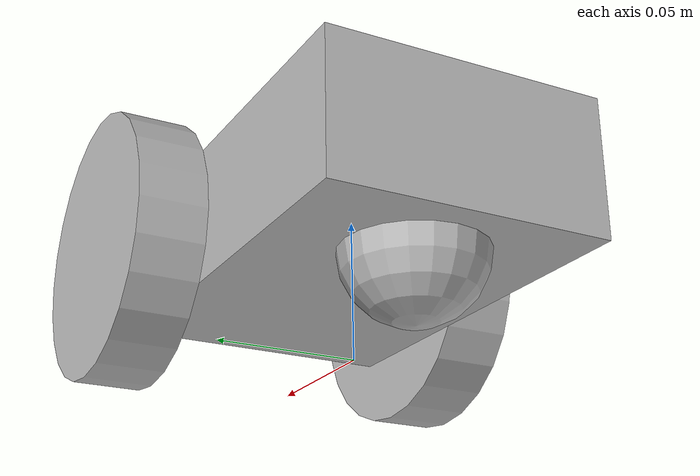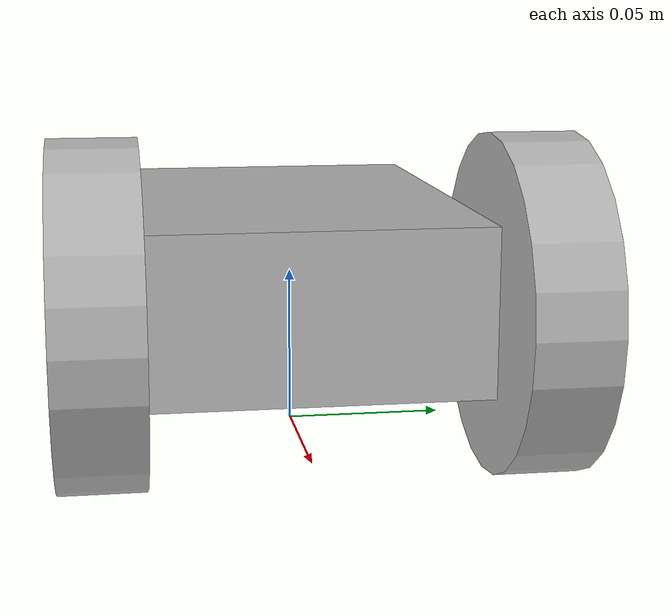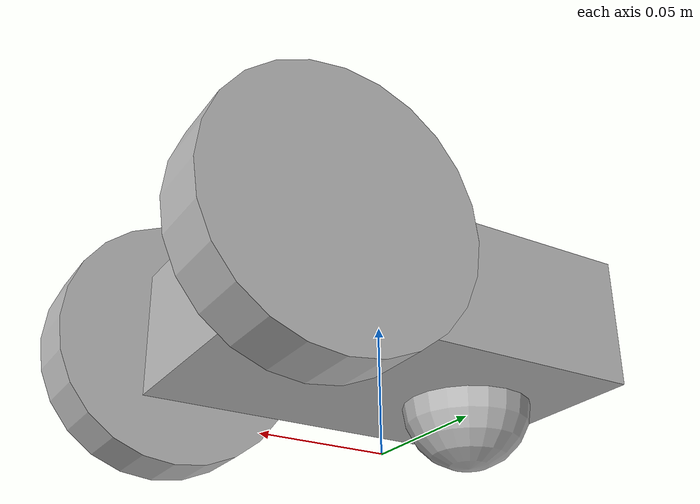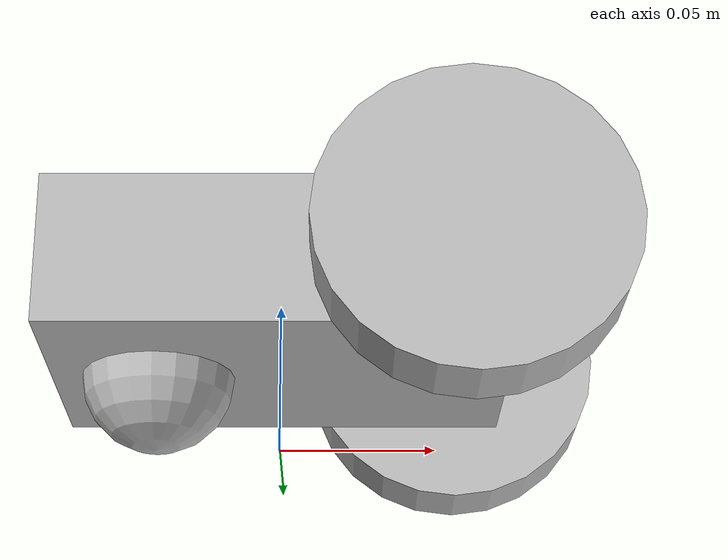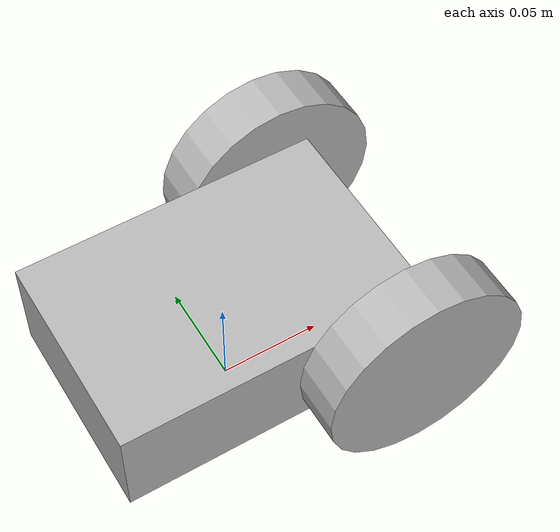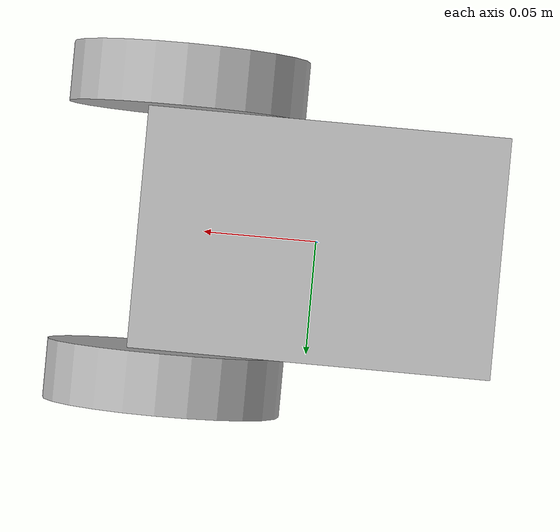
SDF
<?xml version='1.0'?>
<sdf version='1.4'>
	<model name="my_robot">
		<static>false</static>

		<link name='base_link'>
			<pose>0 0 .05 0 0 0</pose>

			<collision name='collision'>
				<geometry>
					<box>
						<size>.15 .1 .05</size>
					</box>
				</geometry>
			</collision>

			<inertial>
				<mass>1.0</mass>  <!-- kg -->
				<inertia>
					<ixx>0.1</ixx>
					<iyy>0.1</iyy>
					<izz>0.1</izz>
					<ixy>0.0</ixy>
					<ixz>0.0</ixz>
					<iyz>0.0</iyz>
				</inertia>
			</inertial>

			<visual name='visual'>
				<geometry>
					<box>
						<size>.15 .1 .05</size>
					</box>
				</geometry>
			</visual>

			<collision name='caster_collision'>
				<pose>-0.04 0 -0.025 0 0 0</pose>
				<geometry>
					<sphere>
						<radius>.025</radius>
					</sphere>
				</geometry>

				<surface>
					<friction>
						<ode>
							<mu>0</mu>
							<mu2>0</mu2>
							<slip1>1.0</slip1>
							<slip2>1.0</slip2>
						</ode>
					</friction>
				</surface>
			</collision>

			<visual name='caster_visual'>
				<pose>-0.04 0 -0.025 0 0 0</pose>
				<geometry>
					<sphere>
						<radius>.025</radius>
					</sphere>
				</geometry>
			</visual>

			<!--  Wheels-->
		</link>
		<link name="left_wheel">
			<pose>0.06 0.0625 0.05 0 1.5707 1.5707</pose>
			<collision name="collision">
				<geometry>
					<cylinder>
						<radius>.05</radius>
						<length>.025</length>
					</cylinder>
				</geometry>
			</collision>

			<inertial>
				<mass>0.1</mass>
				<inertia>
					<ixx>0.002</ixx>
					<iyy>0.001</iyy>
					<izz>0.002</izz>
					<ixy>0</ixy>
					<ixz>0</ixz>
					<iyz>0</iyz>
				</inertia>
			</inertial>

			<visual name="visual">
				<geometry>
					<cylinder>
						<radius>.05</radius>
						<length>.025</length>
					</cylinder>
				</geometry>
			</visual>
		</link>

		<link name="right_wheel">
			<pose>0.06 -0.0625 0.05 0 1.5707 1.5707</pose>
			<collision name="collision">
				<geometry>
					<cylinder>
						<radius>.05</radius>
						<length>.025</length>
					</cylinder>
				</geometry>
			</collision>

			<inertial>
				<mass>0.1</mass>
				<inertia>
					<ixx>0.002</ixx>
					<iyy>0.001</iyy>
					<izz>0.002</izz>
					<ixy>0</ixy>
					<ixz>0</ixz>
					<iyz>0</iyz>
				</inertia>
			</inertial>

			<visual name="visual">
				<geometry>
					<cylinder>
						<radius>.05</radius>
						<length>.025</length>
					</cylinder>
				</geometry>
			</visual>
		</link>

		<!-- Joint definitions-->
		<joint type="revolute" name="left_wheel_hinge">
			<pose>0 0 -0.03 0 0 0</pose>
			<child>left_wheel</child>
			<parent>base_link</parent>
			<axis>
				<xyz>0 1 0</xyz> <!-- Rotation around y axis only-->
			</axis>
		</joint>

		<joint type="revolute" name="right_wheel_hinge">
			<pose>0 0 0.03 0 0 0</pose>
			<child>right_wheel</child>
			<parent>base_link</parent>
			<axis>
				<xyz>0 1 0</xyz>
			</axis>
		</joint>

		<!-- Differential drive control plugin-->
		<plugin name="diff_drive" filename="libgazebo_ros_diff_drive.so">

			<!-- ROS namespace -->
			<ros>
				<namespace>/my_robot</namespace>
			</ros>

			<!-- Joints -->
			<left_joint>left_wheel_hinge</left_joint>
			<right_joint>right_wheel_hinge</right_joint>

			<!-- Robot parameters -->
			<wheel_separation>0.125</wheel_separation> <!-- distance between wheels -->
			<wheel_diameter>0.1</wheel_diameter>

			<!-- Limits -->
			<max_wheel_torque>10</max_wheel_torque>
			<max_wheel_acceleration>5.0</max_wheel_acceleration>

			<!-- Topics -->
			<command_topic>cmd_vel</command_topic>
			<odometry_topic>odom</odometry_topic>

			<!-- Frames -->
			<odometry_frame>odom</odometry_frame>
			<robot_base_frame>base_link</robot_base_frame>

			<!-- Publishing -->
			<publish_odom>true</publish_odom>
			<publish_odom_tf>true</publish_odom_tf>
			<publish_wheel_tf>true</publish_wheel_tf>

		</plugin>

	</model>
</sdf>
